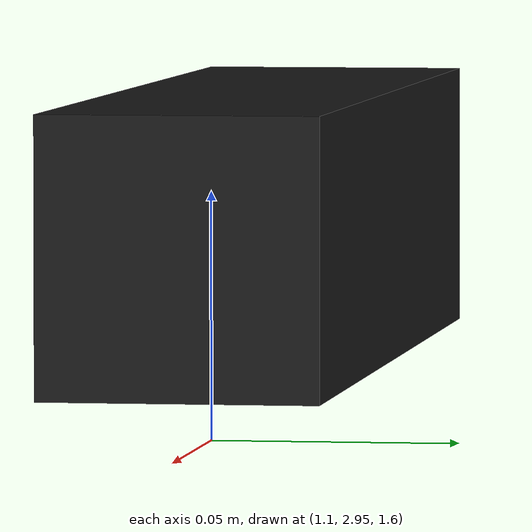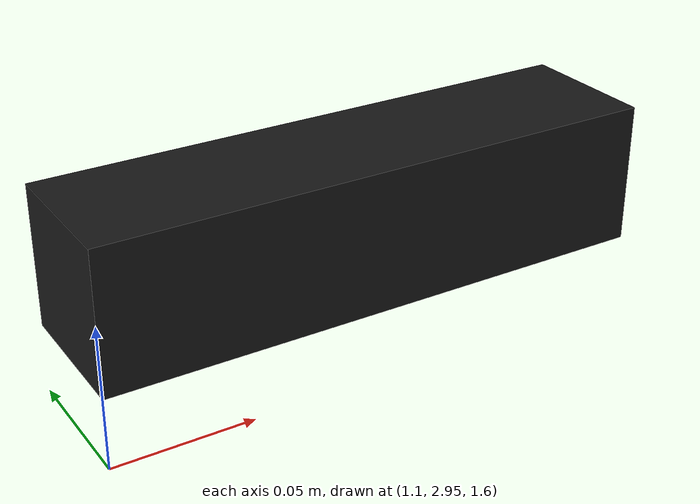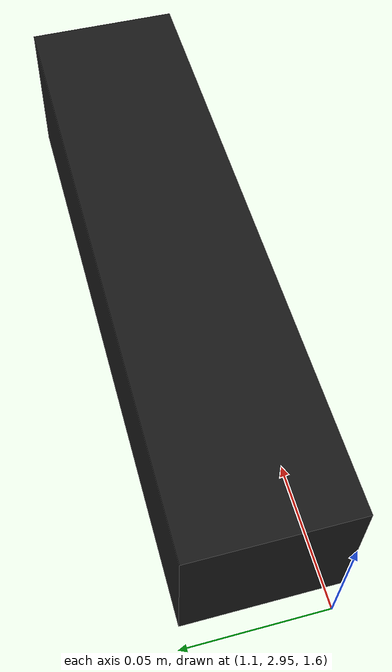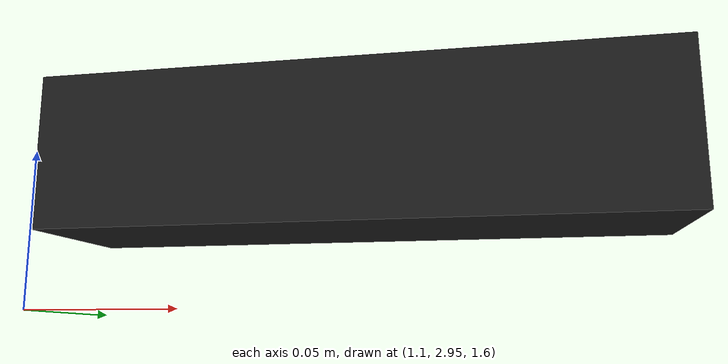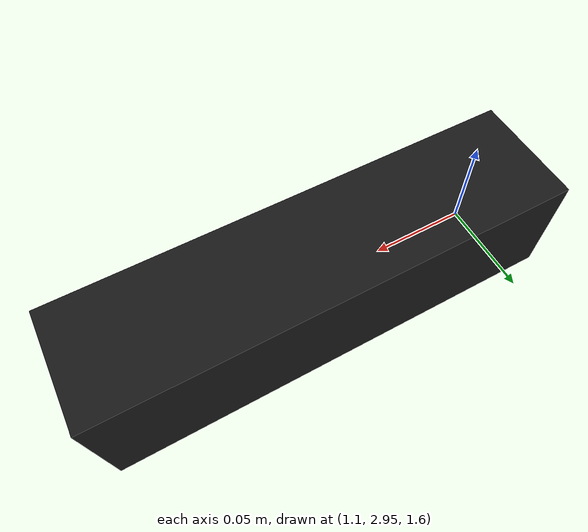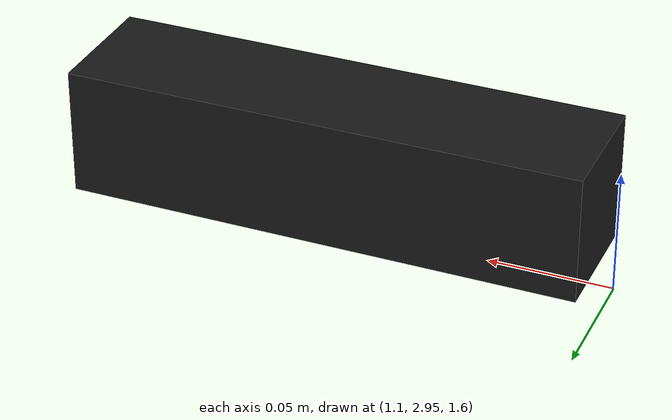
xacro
<?xml version="1.0"?>
<robot name="depth_camera" xmlns:xacro="http://www.ros.org/wiki/xacro">
  <xacro:arg name="prefix" default="depth_camera_"/>

  <!-- URDF -->
  <xacro:include filename="$(find hrwros_support)/urdf/depth_camera/depth_camera.urdf.xacro"/>
  <xacro:depth_camera_urdf prefix="$(arg prefix)"/>

  <!-- Gazebo -->
  <xacro:include filename="$(find hrwros_support)/urdf/depth_camera/depth_camera.gazebo.xacro"/>
  <xacro:depth_camera_gazebo prefix="$(arg prefix)"/>

</robot>

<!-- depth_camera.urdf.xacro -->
<robot name="depth_camera_urdf" xmlns:xacro="http://www.ros.org/wiki/xacro">
  <xacro:macro name="depth_camera_urdf" params="prefix">
    <xacro:property name="length" value="0.2"/>
    <xacro:property name="width" value="0.050"/>
    <xacro:property name="height" value="0.050"/>

    <!-- link list -->
    <link name="${prefix}world_interface"/>
    <link name="${prefix}base_link">
      <visual>
        <origin xyz="0 0 ${height / 2}" rpy="0 0 0" />
        <geometry>
          <box size="${width} ${length} ${height}" />
        </geometry>
        <material name="dark_grey">
          <color rgba="0.1 0.1 0.1 1.0"/>
        </material>
      </visual>
      <collision>
        <origin xyz="0 0 ${height / 2}" rpy="0 0 0" />
        <geometry>
          <box size="${width} ${length} ${height}" />
        </geometry>
        <material name="dark_grey"/>
      </collision>
      <inertial>
        <origin xyz="0 0 0" rpy="0 0 0" />
        <inertia ixx="0.1" ixy="0" ixz="0"
                 iyy="0.1" iyz="0"
                 izz="0.1" />
        <mass value="1" />
      </inertial>
    </link>
    <link name="${prefix}camera_link"/>
    <link name="${prefix}camera_link_optical"/>

    <!-- joint list -->
    <joint name="${prefix}joint_1" type="fixed">
      <parent link="${prefix}world_interface" />
      <child link="${prefix}base_link" />
      <origin xyz="1.2 3.0 1.65" rpy="0 ${radians(90)} -${radians(90)}" />
    </joint>
    <joint name="${prefix}joint_2" type="fixed">
      <parent link="${prefix}base_link" />
      <child link="${prefix}camera_link" />
      <origin xyz="${width / 2} 0 ${height / 2}" rpy="0 0 0" />
    </joint>
    <joint name="${prefix}joint_3" type="fixed">
      <parent link="${prefix}camera_link" />
      <child link="${prefix}camera_link_optical" />
      <origin xyz="0 0 0" rpy="-${radians(90)} 0 -${radians(90)}" />
    </joint>
  </xacro:macro>
</robot>
